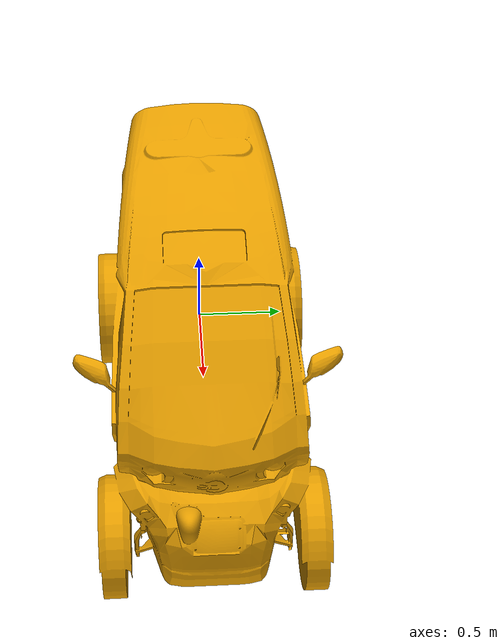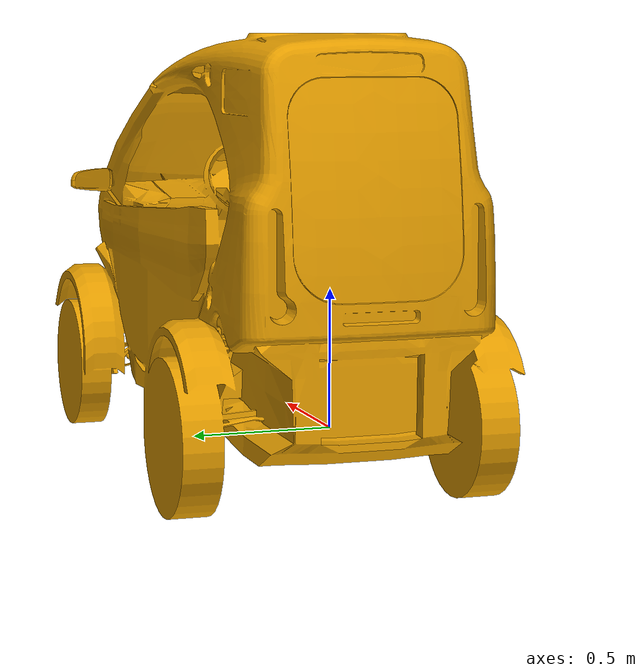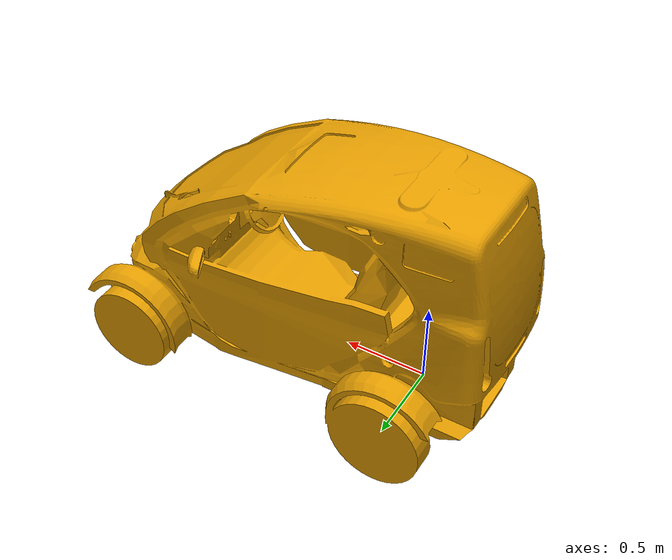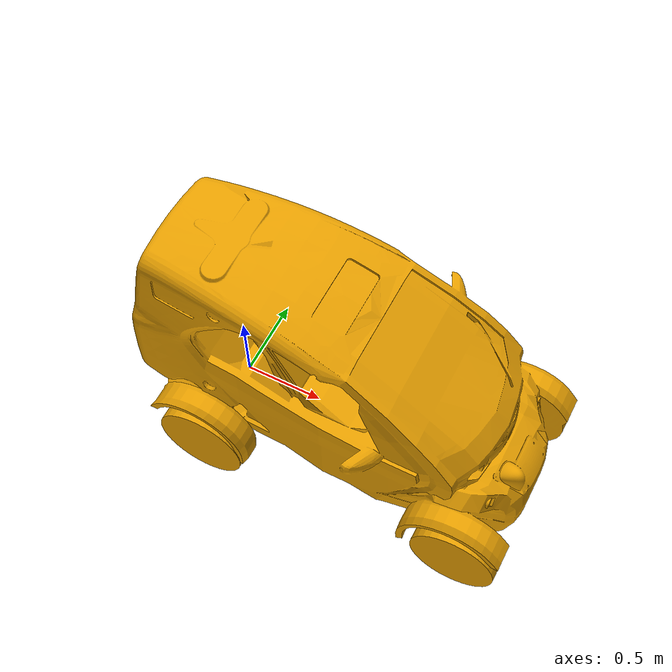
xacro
<?xml version="1.0"?>
<robot xmlns:xacro="http://ros.org/wiki/xacro">
  <!-- load parameter -->
  <xacro:property name="vehicle_info" value="${xacro.load_yaml('$(find twizy_vehicle_description)/config/vehicle_info.param.yaml')}"/>

  <!-- vehicle body -->
  <link name="base_link">
    <visual>
      <origin xyz="0 0 0" rpy="${pi/2.0} 0 ${pi/2.0}"/>
      <geometry>
        <mesh filename="package://twizy_vehicle_description/mesh/twizy.dae" scale="1 1 1"/>
      </geometry>
    </visual>
  </link>
</robot>
